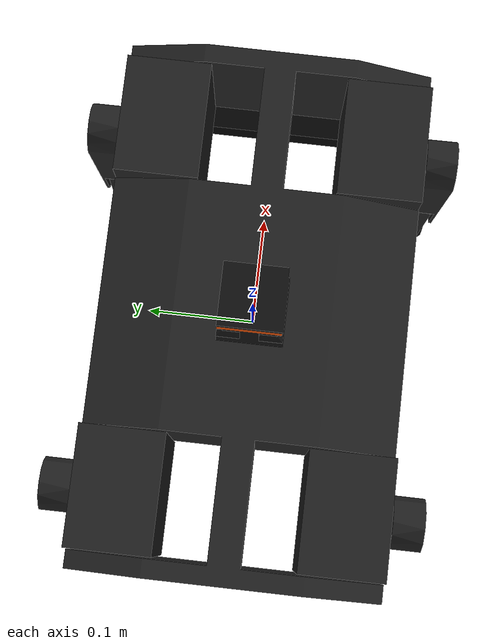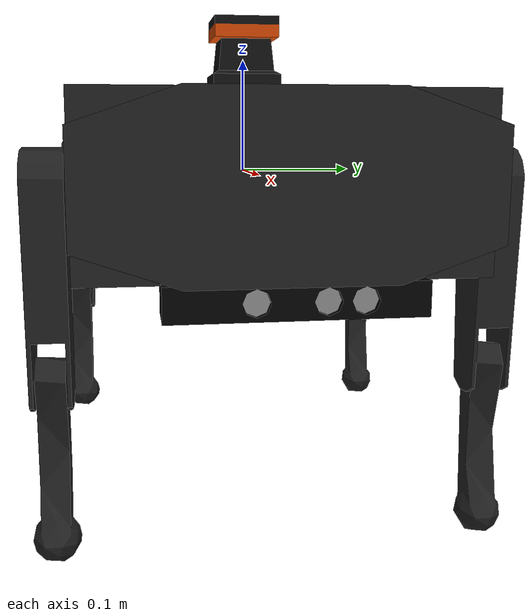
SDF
<sdf version='1.7'>
  <model name='champ'>
    <link name='base_link'>
      <inertial>
        <pose>0.020235 0 0.005403 0 -0 0</pose>
        <mass>2.471</mass>
        <inertia>
          <ixx>0.021707</ixx>
          <ixy>0</ixy>
          <ixz>0.00402013</ixz>
          <iyy>0.0602953</iyy>
          <iyz>0</iyz>
          <izz>0.0679244</izz>
        </inertia>
      </inertial>
      <collision name='base_link_collision'>
        <pose>0 0 0 0 -0 0</pose>
        <geometry>
          <mesh>
            <scale>0.001 0.001 0.001</scale>
            <uri>file:///root/ros2_ws/install/champ_description/share/champ_description/meshes/base_simple.stl</uri>
          </mesh>
        </geometry>
        <surface>
          <contact>
            <ode/>
          </contact>
          <friction>
            <ode/>
          </friction>
        </surface>
      </collision>
      <collision name='base_link_fixed_joint_lump__camera_link_collision_1'>
        <pose>0.25 0 -0.075 0 -0 0</pose>
        <geometry>
          <mesh>
            <scale>1 1 1</scale>
            <uri>file:///root/ros2_ws/install/champ_description/share/champ_description/meshes/asus_camera_simple.dae</uri>
          </mesh>
        </geometry>
      </collision>
      <collision name='base_link_fixed_joint_lump__hokuyo_frame_collision_2'>
        <pose>0 0 0.0935 0 -0 0</pose>
        <geometry>
          <box>
            <size>0.058 0.058 0.087</size>
          </box>
        </geometry>
        <surface>
          <contact>
            <ode/>
          </contact>
          <friction>
            <ode/>
          </friction>
        </surface>
      </collision>
      <visual name='base_link_visual'>
        <pose>0 0 0 0 -0 0</pose>
        <geometry>
          <mesh>
            <scale>0.001 0.001 0.001</scale>
            <uri>file:///root/ros2_ws/install/champ_description/share/champ_description/meshes/base_simple.stl</uri>
          </mesh>
        </geometry>
        <material>
          <script>
            <name>Gazebo/FlatBlack</name>
            <uri>file://media/materials/scripts/gazebo.material</uri>
          </script>
        </material>
      </visual>
      <visual name='base_link_fixed_joint_lump__camera_link_visual_1'>
        <pose>0.25 0 -0.075 0 -0 0</pose>
        <geometry>
          <mesh>
            <scale>1 1 1</scale>
            <uri>file:///root/ros2_ws/install/champ_description/share/champ_description/meshes/asus_camera_simple.dae</uri>
          </mesh>
        </geometry>
      </visual>
      <visual name='base_link_fixed_joint_lump__hokuyo_frame_visual_2'>
        <pose>0 0 0.105 0 -0 0</pose>
        <geometry>
          <mesh>
            <scale>1 1 1</scale>
            <uri>file:///root/ros2_ws/install/champ_description/share/champ_description/meshes/hokuyo_utm_30lx.dae</uri>
          </mesh>
        </geometry>
      </visual>
      <sensor name='camera' type='depth'>
        <update_rate>20</update_rate>
        <camera name='camera_depth_frame_camera'>
          <horizontal_fov>1.09607</horizontal_fov>
          <image>
            <format>R8G8B8</format>
            <width>640</width>
            <height>480</height>
          </image>
          <clip>
            <near>0.5</near>
            <far>9</far>
          </clip>
        </camera>
        <always_on>1</always_on>
        <update_rate>30</update_rate>
        <pose>0.25 0.049 -0.075 0 -0 0</pose>
      </sensor>
      <sensor name='hokuyo' type='ray'>
        <always_on>1</always_on>
        <update_rate>30</update_rate>
        <visualize>0</visualize>
        <ray>
          <scan>
            <horizontal>
              <samples>1040</samples>
              <resolution>1</resolution>
              <min_angle>2.26893</min_angle>
              <max_angle>-2.26893</max_angle>
            </horizontal>
          </scan>
          <range>
            <min>0.2</min>
            <max>30</max>
            <resolution>0.01</resolution>
          </range>
          <noise>
            <type>gaussian</type>
            <mean>0</mean>
            <stddev>0.004</stddev>
          </noise>
        </ray>
        <pose>0 0 0.105 0 -0 0</pose>
      </sensor>
      <sensor name='imu_controller' type='imu'>
        <always_on>1</always_on>
        <update_rate>50</update_rate>
        <pose>0 0 0 0 -0 0</pose>
      </sensor>
    </link>
    <joint name='lf_hip_joint' type='revolute'>
      <pose relative_to='base_link'>0.175 0.105 0 0 -0 0</pose>
      <parent>base_link</parent>
      <child>lf_hip_link</child>
      <axis>
        <xyz>1 0 0</xyz>
        <limit>
          <lower>-3.14159</lower>
          <upper>3.14159</upper>
          <effort>25</effort>
          <velocity>1.5</velocity>
        </limit>
        <dynamics>
          <spring_reference>0</spring_reference>
          <spring_stiffness>0</spring_stiffness>
        </dynamics>
      </axis>
    </joint>
    <link name='lf_hip_link'>
      <pose relative_to='lf_hip_joint'>0 0 0 0 -0 0</pose>
      <inertial>
        <pose>0 0 0 0 -0 0</pose>
        <mass>0.25</mass>
        <inertia>
          <ixx>0.000485417</ixx>
          <ixy>0</ixy>
          <ixz>0</ixz>
          <iyy>0.000613417</iyy>
          <iyz>0</iyz>
          <izz>0.000394667</izz>
        </inertia>
      </inertial>
      <collision name='lf_hip_link_collision'>
        <pose>0 0 0 0 -0 0</pose>
        <geometry>
          <mesh>
            <scale>0.001 0.001 0.001</scale>
            <uri>file:///root/ros2_ws/install/champ_description/share/champ_description/meshes/hip.stl</uri>
          </mesh>
        </geometry>
        <surface>
          <contact>
            <ode/>
          </contact>
          <friction>
            <ode/>
          </friction>
        </surface>
      </collision>
      <visual name='lf_hip_link_visual'>
        <pose>0 0 0 0 -0 0</pose>
        <geometry>
          <mesh>
            <scale>0.001 0.001 0.001</scale>
            <uri>file:///root/ros2_ws/install/champ_description/share/champ_description/meshes/hip.stl</uri>
          </mesh>
        </geometry>
        <material>
          <script>
            <name>Gazebo/FlatBlack</name>
            <uri>file://media/materials/scripts/gazebo.material</uri>
          </script>
        </material>
      </visual>
    </link>
    <joint name='lf_upper_leg_joint' type='revolute'>
      <pose relative_to='lf_hip_link'>0 0.06 0 0 -0 0</pose>
      <parent>lf_hip_link</parent>
      <child>lf_upper_leg_link</child>
      <axis>
        <xyz>0 1 0</xyz>
        <limit>
          <lower>-3.14159</lower>
          <upper>3.14159</upper>
          <effort>25</effort>
          <velocity>1.5</velocity>
        </limit>
        <dynamics>
          <spring_reference>0</spring_reference>
          <spring_stiffness>0</spring_stiffness>
        </dynamics>
      </axis>
    </joint>
    <link name='lf_upper_leg_link'>
      <pose relative_to='lf_upper_leg_joint'>0 0 0 0 -0 0</pose>
      <inertial>
        <pose>0 0 -0.0705 0 -0 0</pose>
        <mass>0.125</mass>
        <inertia>
          <ixx>0.000387398</ixx>
          <ixy>0</ixy>
          <ixz>0</ixz>
          <iyy>0.000404065</iyy>
          <iyz>0</iyz>
          <izz>3.54167e-05</izz>
        </inertia>
      </inertial>
      <collision name='lf_upper_leg_link_collision'>
        <pose>0 0 0 0 -0 0</pose>
        <geometry>
          <mesh>
            <scale>0.001 0.001 0.001</scale>
            <uri>file:///root/ros2_ws/install/champ_description/share/champ_description/meshes/upper_leg_simple.stl</uri>
          </mesh>
        </geometry>
        <surface>
          <contact>
            <ode/>
          </contact>
          <friction>
            <ode/>
          </friction>
        </surface>
      </collision>
      <visual name='lf_upper_leg_link_visual'>
        <pose>0 0 0 0 -0 0</pose>
        <geometry>
          <mesh>
            <scale>0.001 0.001 0.001</scale>
            <uri>file:///root/ros2_ws/install/champ_description/share/champ_description/meshes/upper_leg_simple.stl</uri>
          </mesh>
        </geometry>
        <material>
          <script>
            <name>Gazebo/FlatBlack</name>
            <uri>file://media/materials/scripts/gazebo.material</uri>
          </script>
        </material>
      </visual>
    </link>
    <joint name='lf_lower_leg_joint' type='revolute'>
      <pose relative_to='lf_upper_leg_link'>0 0 -0.141 0 -0 0</pose>
      <parent>lf_upper_leg_link</parent>
      <child>lf_lower_leg_link</child>
      <axis>
        <xyz>0 1 0</xyz>
        <limit>
          <lower>-3.14159</lower>
          <upper>3.14159</upper>
          <effort>25</effort>
          <velocity>1.5</velocity>
        </limit>
        <dynamics>
          <spring_reference>0</spring_reference>
          <spring_stiffness>0</spring_stiffness>
        </dynamics>
      </axis>
    </joint>
    <link name='lf_lower_leg_link'>
      <pose relative_to='lf_lower_leg_joint'>0 0 0 0 -0 0</pose>
      <inertial>
        <pose>0 0 -0.063 0 -0 0</pose>
        <mass>0.125</mass>
        <inertia>
          <ixx>0.000258542</ixx>
          <ixy>0</ixy>
          <ixz>0</ixz>
          <iyy>0.000269344</iyy>
          <iyz>0</iyz>
          <izz>2.08854e-05</izz>
        </inertia>
      </inertial>
      <collision name='lf_lower_leg_link_collision'>
        <pose>0 0 0 0 -0 0</pose>
        <geometry>
          <mesh>
            <scale>0.001 0.001 0.001</scale>
            <uri>file:///root/ros2_ws/install/champ_description/share/champ_description/meshes/lower_leg_simple.stl</uri>
          </mesh>
        </geometry>
        <surface>
          <contact>
            <ode>
              <kp>1e+10</kp>
              <kd>100</kd>
              <min_depth>0.05</min_depth>
            </ode>
          </contact>
          <friction>
            <ode>
              <mu>0.8</mu>
              <mu2>0.8</mu2>
            </ode>
          </friction>
        </surface>
      </collision>
      <visual name='lf_lower_leg_link_visual'>
        <pose>0 0 0 0 -0 0</pose>
        <geometry>
          <mesh>
            <scale>0.001 0.001 0.001</scale>
            <uri>file:///root/ros2_ws/install/champ_description/share/champ_description/meshes/lower_leg_simple.stl</uri>
          </mesh>
        </geometry>
        <material>
          <script>
            <name>Gazebo/FlatBlack</name>
            <uri>file://media/materials/scripts/gazebo.material</uri>
          </script>
        </material>
      </visual>
    </link>
    <joint name='lh_hip_joint' type='revolute'>
      <pose relative_to='base_link'>-0.175 0.105 0 0 -0 0</pose>
      <parent>base_link</parent>
      <child>lh_hip_link</child>
      <axis>
        <xyz>1 0 0</xyz>
        <limit>
          <lower>-3.14159</lower>
          <upper>3.14159</upper>
          <effort>25</effort>
          <velocity>1.5</velocity>
        </limit>
        <dynamics>
          <spring_reference>0</spring_reference>
          <spring_stiffness>0</spring_stiffness>
        </dynamics>
      </axis>
    </joint>
    <link name='lh_hip_link'>
      <pose relative_to='lh_hip_joint'>0 0 0 0 -0 0</pose>
      <inertial>
        <pose>0 0 0 0 -0 0</pose>
        <mass>0.25</mass>
        <inertia>
          <ixx>0.000485417</ixx>
          <ixy>0</ixy>
          <ixz>0</ixz>
          <iyy>0.000613417</iyy>
          <iyz>0</iyz>
          <izz>0.000394667</izz>
        </inertia>
      </inertial>
      <collision name='lh_hip_link_collision'>
        <pose>0 0 0 0 -0 0</pose>
        <geometry>
          <mesh>
            <scale>0.001 0.001 0.001</scale>
            <uri>file:///root/ros2_ws/install/champ_description/share/champ_description/meshes/hip.stl</uri>
          </mesh>
        </geometry>
        <surface>
          <contact>
            <ode/>
          </contact>
          <friction>
            <ode/>
          </friction>
        </surface>
      </collision>
      <visual name='lh_hip_link_visual'>
        <pose>0 0 0 0 -0 0</pose>
        <geometry>
          <mesh>
            <scale>0.001 0.001 0.001</scale>
            <uri>file:///root/ros2_ws/install/champ_description/share/champ_description/meshes/hip.stl</uri>
          </mesh>
        </geometry>
        <material>
          <script>
            <name>Gazebo/FlatBlack</name>
            <uri>file://media/materials/scripts/gazebo.material</uri>
          </script>
        </material>
      </visual>
    </link>
    <joint name='lh_upper_leg_joint' type='revolute'>
      <pose relative_to='lh_hip_link'>0 0.06 0 0 -0 0</pose>
      <parent>lh_hip_link</parent>
      <child>lh_upper_leg_link</child>
      <axis>
        <xyz>0 1 0</xyz>
        <limit>
          <lower>-3.14159</lower>
          <upper>3.14159</upper>
          <effort>25</effort>
          <velocity>1.5</velocity>
        </limit>
        <dynamics>
          <spring_reference>0</spring_reference>
          <spring_stiffness>0</spring_stiffness>
        </dynamics>
      </axis>
    </joint>
    <link name='lh_upper_leg_link'>
      <pose relative_to='lh_upper_leg_joint'>0 0 0 0 -0 0</pose>
      <inertial>
        <pose>0 0 -0.0705 0 -0 0</pose>
        <mass>0.125</mass>
        <inertia>
          <ixx>0.000387398</ixx>
          <ixy>0</ixy>
          <ixz>0</ixz>
          <iyy>0.000404065</iyy>
          <iyz>0</iyz>
          <izz>3.54167e-05</izz>
        </inertia>
      </inertial>
      <collision name='lh_upper_leg_link_collision'>
        <pose>0 0 0 0 -0 0</pose>
        <geometry>
          <mesh>
            <scale>0.001 0.001 0.001</scale>
            <uri>file:///root/ros2_ws/install/champ_description/share/champ_description/meshes/upper_leg_simple.stl</uri>
          </mesh>
        </geometry>
        <surface>
          <contact>
            <ode/>
          </contact>
          <friction>
            <ode/>
          </friction>
        </surface>
      </collision>
      <visual name='lh_upper_leg_link_visual'>
        <pose>0 0 0 0 -0 0</pose>
        <geometry>
          <mesh>
            <scale>0.001 0.001 0.001</scale>
            <uri>file:///root/ros2_ws/install/champ_description/share/champ_description/meshes/upper_leg_simple.stl</uri>
          </mesh>
        </geometry>
        <material>
          <script>
            <name>Gazebo/FlatBlack</name>
            <uri>file://media/materials/scripts/gazebo.material</uri>
          </script>
        </material>
      </visual>
    </link>
    <joint name='lh_lower_leg_joint' type='revolute'>
      <pose relative_to='lh_upper_leg_link'>0 0 -0.141 0 -0 0</pose>
      <parent>lh_upper_leg_link</parent>
      <child>lh_lower_leg_link</child>
      <axis>
        <xyz>0 1 0</xyz>
        <limit>
          <lower>-3.14159</lower>
          <upper>3.14159</upper>
          <effort>25</effort>
          <velocity>1.5</velocity>
        </limit>
        <dynamics>
          <spring_reference>0</spring_reference>
          <spring_stiffness>0</spring_stiffness>
        </dynamics>
      </axis>
    </joint>
    <link name='lh_lower_leg_link'>
      <pose relative_to='lh_lower_leg_joint'>0 0 0 0 -0 0</pose>
      <inertial>
        <pose>0 0 -0.063 0 -0 0</pose>
        <mass>0.125</mass>
        <inertia>
          <ixx>0.000258542</ixx>
          <ixy>0</ixy>
          <ixz>0</ixz>
          <iyy>0.000269344</iyy>
          <iyz>0</iyz>
          <izz>2.08854e-05</izz>
        </inertia>
      </inertial>
      <collision name='lh_lower_leg_link_collision'>
        <pose>0 0 0 0 -0 0</pose>
        <geometry>
          <mesh>
            <scale>0.001 0.001 0.001</scale>
            <uri>file:///root/ros2_ws/install/champ_description/share/champ_description/meshes/lower_leg_simple.stl</uri>
          </mesh>
        </geometry>
        <surface>
          <contact>
            <ode>
              <kp>1e+10</kp>
              <kd>100</kd>
              <min_depth>0.05</min_depth>
            </ode>
          </contact>
          <friction>
            <ode>
              <mu>0.8</mu>
              <mu2>0.8</mu2>
            </ode>
          </friction>
        </surface>
      </collision>
      <visual name='lh_lower_leg_link_visual'>
        <pose>0 0 0 0 -0 0</pose>
        <geometry>
          <mesh>
            <scale>0.001 0.001 0.001</scale>
            <uri>file:///root/ros2_ws/install/champ_description/share/champ_description/meshes/lower_leg_simple.stl</uri>
          </mesh>
        </geometry>
        <material>
          <script>
            <name>Gazebo/FlatBlack</name>
            <uri>file://media/materials/scripts/gazebo.material</uri>
          </script>
        </material>
      </visual>
    </link>
    <joint name='rf_hip_joint' type='revolute'>
      <pose relative_to='base_link'>0.175 -0.105 0 0 -0 0</pose>
      <parent>base_link</parent>
      <child>rf_hip_link</child>
      <axis>
        <xyz>1 0 0</xyz>
        <limit>
          <lower>-3.14159</lower>
          <upper>3.14159</upper>
          <effort>25</effort>
          <velocity>1.5</velocity>
        </limit>
        <dynamics>
          <spring_reference>0</spring_reference>
          <spring_stiffness>0</spring_stiffness>
        </dynamics>
      </axis>
    </joint>
    <link name='rf_hip_link'>
      <pose relative_to='rf_hip_joint'>0 0 0 0 -0 0</pose>
      <inertial>
        <pose>0 0 0 0 -0 0</pose>
        <mass>0.25</mass>
        <inertia>
          <ixx>0.000485417</ixx>
          <ixy>0</ixy>
          <ixz>0</ixz>
          <iyy>0.000613417</iyy>
          <iyz>0</iyz>
          <izz>0.000394667</izz>
        </inertia>
      </inertial>
      <collision name='rf_hip_link_collision'>
        <pose>0 0 0 0 -0 0</pose>
        <geometry>
          <mesh>
            <scale>0.001 0.001 0.001</scale>
            <uri>file:///root/ros2_ws/install/champ_description/share/champ_description/meshes/hip.stl</uri>
          </mesh>
        </geometry>
        <surface>
          <contact>
            <ode/>
          </contact>
          <friction>
            <ode/>
          </friction>
        </surface>
      </collision>
      <visual name='rf_hip_link_visual'>
        <pose>0 0 0 0 -0 0</pose>
        <geometry>
          <mesh>
            <scale>0.001 0.001 0.001</scale>
            <uri>file:///root/ros2_ws/install/champ_description/share/champ_description/meshes/hip.stl</uri>
          </mesh>
        </geometry>
        <material>
          <script>
            <name>Gazebo/FlatBlack</name>
            <uri>file://media/materials/scripts/gazebo.material</uri>
          </script>
        </material>
      </visual>
    </link>
    <joint name='rf_upper_leg_joint' type='revolute'>
      <pose relative_to='rf_hip_link'>0 -0.06 0 0 -0 0</pose>
      <parent>rf_hip_link</parent>
      <child>rf_upper_leg_link</child>
      <axis>
        <xyz>0 1 0</xyz>
        <limit>
          <lower>-3.14159</lower>
          <upper>3.14159</upper>
          <effort>25</effort>
          <velocity>1.5</velocity>
        </limit>
        <dynamics>
          <spring_reference>0</spring_reference>
          <spring_stiffness>0</spring_stiffness>
        </dynamics>
      </axis>
    </joint>
    <link name='rf_upper_leg_link'>
      <pose relative_to='rf_upper_leg_joint'>0 0 0 0 -0 0</pose>
      <inertial>
        <pose>0 0 -0.0705 0 -0 0</pose>
        <mass>0.125</mass>
        <inertia>
          <ixx>0.000387398</ixx>
          <ixy>0</ixy>
          <ixz>0</ixz>
          <iyy>0.000404065</iyy>
          <iyz>0</iyz>
          <izz>3.54167e-05</izz>
        </inertia>
      </inertial>
      <collision name='rf_upper_leg_link_collision'>
        <pose>0 0 0 0 -0 0</pose>
        <geometry>
          <mesh>
            <scale>0.001 0.001 0.001</scale>
            <uri>file:///root/ros2_ws/install/champ_description/share/champ_description/meshes/upper_leg_simple.stl</uri>
          </mesh>
        </geometry>
        <surface>
          <contact>
            <ode/>
          </contact>
          <friction>
            <ode/>
          </friction>
        </surface>
      </collision>
      <visual name='rf_upper_leg_link_visual'>
        <pose>0 0 0 0 -0 0</pose>
        <geometry>
          <mesh>
            <scale>0.001 0.001 0.001</scale>
            <uri>file:///root/ros2_ws/install/champ_description/share/champ_description/meshes/upper_leg_simple.stl</uri>
          </mesh>
        </geometry>
        <material>
          <script>
            <name>Gazebo/FlatBlack</name>
            <uri>file://media/materials/scripts/gazebo.material</uri>
          </script>
        </material>
      </visual>
    </link>
    <joint name='rf_lower_leg_joint' type='revolute'>
      <pose relative_to='rf_upper_leg_link'>0 0 -0.141 0 -0 0</pose>
      <parent>rf_upper_leg_link</parent>
      <child>rf_lower_leg_link</child>
      <axis>
        <xyz>0 1 0</xyz>
        <limit>
          <lower>-3.14159</lower>
          <upper>3.14159</upper>
          <effort>25</effort>
          <velocity>1.5</velocity>
        </limit>
        <dynamics>
          <spring_reference>0</spring_reference>
          <spring_stiffness>0</spring_stiffness>
        </dynamics>
      </axis>
    </joint>
    <link name='rf_lower_leg_link'>
      <pose relative_to='rf_lower_leg_joint'>0 0 0 0 -0 0</pose>
      <inertial>
        <pose>0 0 -0.063 0 -0 0</pose>
        <mass>0.125</mass>
        <inertia>
          <ixx>0.000258542</ixx>
          <ixy>0</ixy>
          <ixz>0</ixz>
          <iyy>0.000269344</iyy>
          <iyz>0</iyz>
          <izz>2.08854e-05</izz>
        </inertia>
      </inertial>
      <collision name='rf_lower_leg_link_collision'>
        <pose>0 0 0 0 -0 0</pose>
        <geometry>
          <mesh>
            <scale>0.001 0.001 0.001</scale>
            <uri>file:///root/ros2_ws/install/champ_description/share/champ_description/meshes/lower_leg_simple.stl</uri>
          </mesh>
        </geometry>
        <surface>
          <contact>
            <ode>
              <kp>1e+10</kp>
              <kd>100</kd>
              <min_depth>0.05</min_depth>
            </ode>
          </contact>
          <friction>
            <ode>
              <mu>0.8</mu>
              <mu2>0.8</mu2>
            </ode>
          </friction>
        </surface>
      </collision>
      <visual name='rf_lower_leg_link_visual'>
        <pose>0 0 0 0 -0 0</pose>
        <geometry>
          <mesh>
            <scale>0.001 0.001 0.001</scale>
            <uri>file:///root/ros2_ws/install/champ_description/share/champ_description/meshes/lower_leg_simple.stl</uri>
          </mesh>
        </geometry>
        <material>
          <script>
            <name>Gazebo/FlatBlack</name>
            <uri>file://media/materials/scripts/gazebo.material</uri>
          </script>
        </material>
      </visual>
    </link>
    <joint name='rh_hip_joint' type='revolute'>
      <pose relative_to='base_link'>-0.175 -0.105 0 0 -0 0</pose>
      <parent>base_link</parent>
      <child>rh_hip_link</child>
      <axis>
        <xyz>1 0 0</xyz>
        <limit>
          <lower>-3.14159</lower>
          <upper>3.14159</upper>
          <effort>25</effort>
          <velocity>1.5</velocity>
        </limit>
        <dynamics>
          <spring_reference>0</spring_reference>
          <spring_stiffness>0</spring_stiffness>
        </dynamics>
      </axis>
    </joint>
    <link name='rh_hip_link'>
      <pose relative_to='rh_hip_joint'>0 0 0 0 -0 0</pose>
      <inertial>
        <pose>0 0 0 0 -0 0</pose>
        <mass>0.25</mass>
        <inertia>
          <ixx>0.000485417</ixx>
          <ixy>0</ixy>
          <ixz>0</ixz>
          <iyy>0.000613417</iyy>
          <iyz>0</iyz>
          <izz>0.000394667</izz>
        </inertia>
      </inertial>
      <collision name='rh_hip_link_collision'>
        <pose>0 0 0 0 -0 0</pose>
        <geometry>
          <mesh>
            <scale>0.001 0.001 0.001</scale>
            <uri>file:///root/ros2_ws/install/champ_description/share/champ_description/meshes/hip.stl</uri>
          </mesh>
        </geometry>
        <surface>
          <contact>
            <ode/>
          </contact>
          <friction>
            <ode/>
          </friction>
        </surface>
      </collision>
      <visual name='rh_hip_link_visual'>
        <pose>0 0 0 0 -0 0</pose>
        <geometry>
          <mesh>
            <scale>0.001 0.001 0.001</scale>
            <uri>file:///root/ros2_ws/install/champ_description/share/champ_description/meshes/hip.stl</uri>
          </mesh>
        </geometry>
        <material>
          <script>
            <name>Gazebo/FlatBlack</name>
            <uri>file://media/materials/scripts/gazebo.material</uri>
          </script>
        </material>
      </visual>
    </link>
    <joint name='rh_upper_leg_joint' type='revolute'>
      <pose relative_to='rh_hip_link'>0 -0.06 0 0 -0 0</pose>
      <parent>rh_hip_link</parent>
      <child>rh_upper_leg_link</child>
      <axis>
        <xyz>0 1 0</xyz>
        <limit>
          <lower>-3.14159</lower>
          <upper>3.14159</upper>
          <effort>25</effort>
          <velocity>1.5</velocity>
        </limit>
        <dynamics>
          <spring_reference>0</spring_reference>
          <spring_stiffness>0</spring_stiffness>
        </dynamics>
      </axis>
    </joint>
    <link name='rh_upper_leg_link'>
      <pose relative_to='rh_upper_leg_joint'>0 0 0 0 -0 0</pose>
      <inertial>
        <pose>0 0 -0.0705 0 -0 0</pose>
        <mass>0.125</mass>
        <inertia>
          <ixx>0.000387398</ixx>
          <ixy>0</ixy>
          <ixz>0</ixz>
          <iyy>0.000404065</iyy>
          <iyz>0</iyz>
          <izz>3.54167e-05</izz>
        </inertia>
      </inertial>
      <collision name='rh_upper_leg_link_collision'>
        <pose>0 0 0 0 -0 0</pose>
        <geometry>
          <mesh>
            <scale>0.001 0.001 0.001</scale>
            <uri>file:///root/ros2_ws/install/champ_description/share/champ_description/meshes/upper_leg_simple.stl</uri>
          </mesh>
        </geometry>
        <surface>
          <contact>
            <ode/>
          </contact>
          <friction>
            <ode/>
          </friction>
        </surface>
      </collision>
      <visual name='rh_upper_leg_link_visual'>
        <pose>0 0 0 0 -0 0</pose>
        <geometry>
          <mesh>
            <scale>0.001 0.001 0.001</scale>
            <uri>file:///root/ros2_ws/install/champ_description/share/champ_description/meshes/upper_leg_simple.stl</uri>
          </mesh>
        </geometry>
        <material>
          <script>
            <name>Gazebo/FlatBlack</name>
            <uri>file://media/materials/scripts/gazebo.material</uri>
          </script>
        </material>
      </visual>
    </link>
    <joint name='rh_lower_leg_joint' type='revolute'>
      <pose relative_to='rh_upper_leg_link'>0 0 -0.141 0 -0 0</pose>
      <parent>rh_upper_leg_link</parent>
      <child>rh_lower_leg_link</child>
      <axis>
        <xyz>0 1 0</xyz>
        <limit>
          <lower>-3.14159</lower>
          <upper>3.14159</upper>
          <effort>25</effort>
          <velocity>1.5</velocity>
        </limit>
        <dynamics>
          <spring_reference>0</spring_reference>
          <spring_stiffness>0</spring_stiffness>
        </dynamics>
      </axis>
    </joint>
    <link name='rh_lower_leg_link'>
      <pose relative_to='rh_lower_leg_joint'>0 0 0 0 -0 0</pose>
      <inertial>
        <pose>0 0 -0.063 0 -0 0</pose>
        <mass>0.125</mass>
        <inertia>
          <ixx>0.000258542</ixx>
          <ixy>0</ixy>
          <ixz>0</ixz>
          <iyy>0.000269344</iyy>
          <iyz>0</iyz>
          <izz>2.08854e-05</izz>
        </inertia>
      </inertial>
      <collision name='rh_lower_leg_link_collision'>
        <pose>0 0 0 0 -0 0</pose>
        <geometry>
          <mesh>
            <scale>0.001 0.001 0.001</scale>
            <uri>file:///root/ros2_ws/install/champ_description/share/champ_description/meshes/lower_leg_simple.stl</uri>
          </mesh>
        </geometry>
        <surface>
          <contact>
            <ode>
              <kp>1e+10</kp>
              <kd>100</kd>
              <min_depth>0.05</min_depth>
            </ode>
          </contact>
          <friction>
            <ode>
              <mu>0.8</mu>
              <mu2>0.8</mu2>
            </ode>
          </friction>
        </surface>
      </collision>
      <visual name='rh_lower_leg_link_visual'>
        <pose>0 0 0 0 -0 0</pose>
        <geometry>
          <mesh>
            <scale>0.001 0.001 0.001</scale>
            <uri>file:///root/ros2_ws/install/champ_description/share/champ_description/meshes/lower_leg_simple.stl</uri>
          </mesh>
        </geometry>
        <material>
          <script>
            <name>Gazebo/FlatBlack</name>
            <uri>file://media/materials/scripts/gazebo.material</uri>
          </script>
        </material>
      </visual>
    </link>
    <static>0</static>
  </model>
</sdf>
